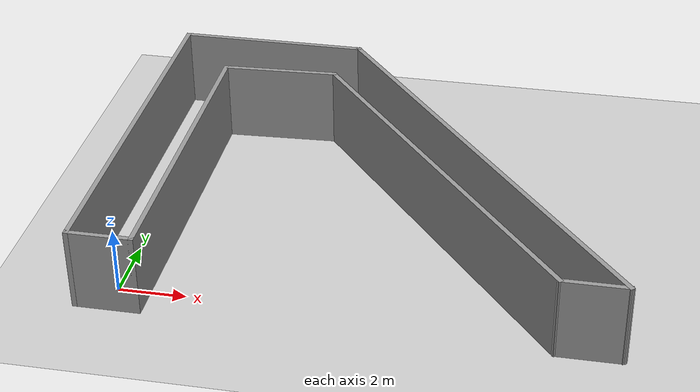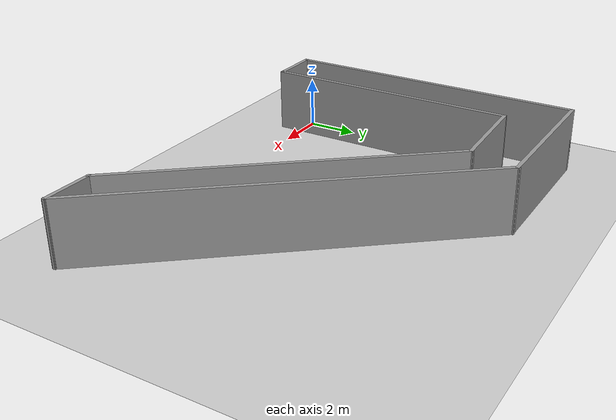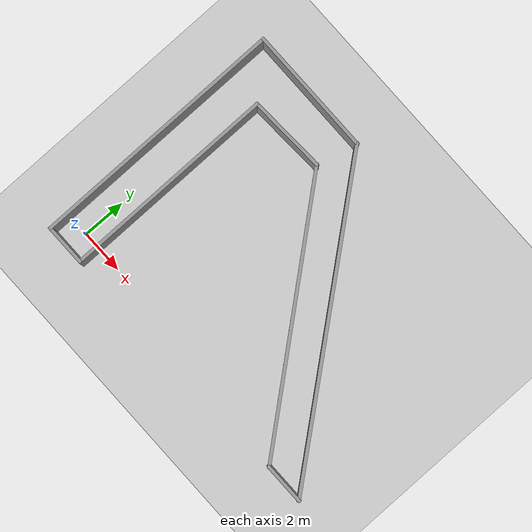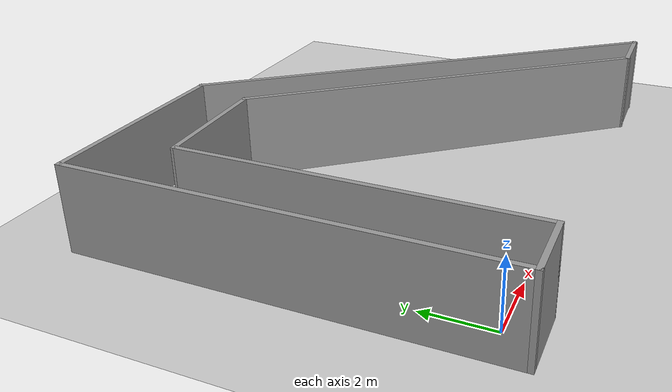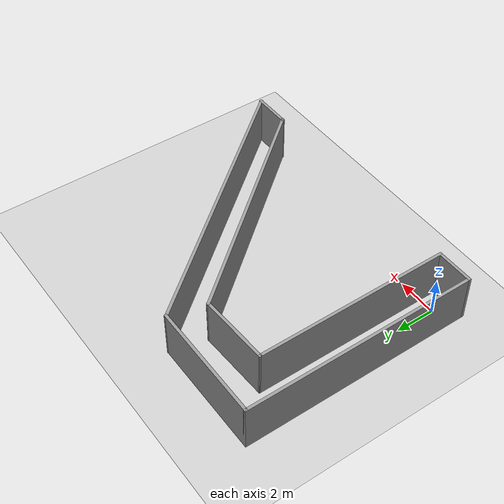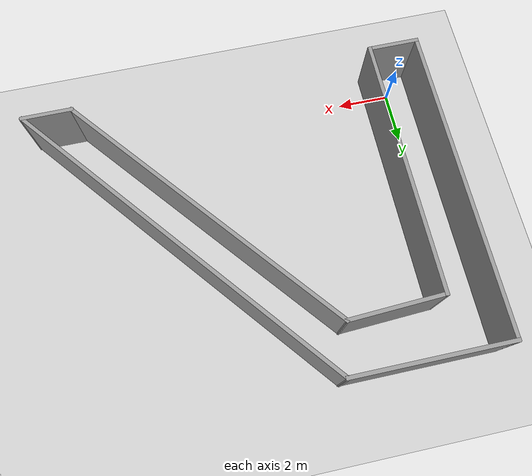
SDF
<sdf version="1.6">
 <world name="default">
  <light name="sun" type="directional">
   <pose>0 0 10 0 -0 0</pose>
   <diffuse>0.8 0.8 0.8 1</diffuse>
   <specular>0.1 0.1 0.1 1</specular>
   <attenuation>
    <range>1000</range>
    <constant>0.9</constant>
    <linear>0.01</linear>
    <quadratic>0.001</quadratic>
   </attenuation>
   <direction>-0.5 0.5 -1</direction>
  </light>
  <model name="ground_plane">
   <static>1</static>
   <link name="link">
    <collision name="collision">
     <geometry><plane><normal>0 0 1</normal><size>100 100</size></plane></geometry>
     <surface><friction><ode><mu>100</mu><mu2>50</mu2></ode></friction></surface>
    </collision>
    <visual name="visual">
     <cast_shadows>0</cast_shadows>
     <geometry><plane><normal>0 0 1</normal><size>100 100</size></plane></geometry>
     <material>
      <script><uri>file://media/materials/scripts/gazebo.material</uri><name>Gazebo/Grey</name></script>
     </material>
    </visual>
   </link>
  </model>
  <gravity>0 0 -9.8</gravity>
  <magnetic_field>6e-06 2.3e-05 -4.2e-05</magnetic_field>
  <atmosphere type="adiabatic"/>
  <physics name="default_physics" default="0" type="ode">
   <max_step_size>0.001</max_step_size>
   <real_time_factor>1</real_time_factor>
   <real_time_update_rate>1000</real_time_update_rate>
  </physics>
  <scene><ambient>0.4 0.4 0.4 1</ambient><background>0.7 0.7 0.7 1</background><shadows>1</shadows></scene>
  <spherical_coordinates>
   <surface_model>EARTH_WGS84</surface_model>
   <latitude_deg>0</latitude_deg>
   <longitude_deg>0</longitude_deg>
   <elevation>0</elevation>
   <heading_deg>0</heading_deg>
  </spherical_coordinates>
  <model name="mapa3">
   <pose>6.68688 5.03577 0 0 -0 0</pose>
   <link name="Wall_24">
    <collision name="Wall_24_Collision">
     <geometry><box><size>2 0.15 2.5</size></box></geometry>
     <pose>0 0 1.25 0 -0 0</pose>
    </collision>
    <visual name="Wall_24_Visual">
     <pose>0 0 1.25 0 -0 0</pose>
     <geometry><box><size>2 0.15 2.5</size></box></geometry>
     <material>
      <script><uri>file://media/materials/scripts/gazebo.material</uri><name>Gazebo/Grey</name></script>
      <ambient>1 1 1 1</ambient>
     </material>
     <meta><layer>0</layer></meta>
    </visual>
    <pose>-6.7334 -5.94024 0 0 -0 0</pose>
   </link>
   <link name="Wall_25">
    <collision name="Wall_25_Collision">
     <geometry><box><size>10 0.15 2.5</size></box></geometry>
     <pose>0 0 1.25 0 -0 0</pose>
    </collision>
    <visual name="Wall_25_Visual">
     <pose>0 0 1.25 0 -0 0</pose>
     <geometry><box><size>10 0.15 2.5</size></box></geometry>
     <material>
      <script><uri>file://media/materials/scripts/gazebo.material</uri><name>Gazebo/Grey</name></script>
      <ambient>1 1 1 1</ambient>
     </material>
     <meta><layer>0</layer></meta>
    </visual>
    <pose>-5.8084 -1.01524 0 0 -0 1.5708</pose>
   </link>
   <link name="Wall_29">
    <collision name="Wall_29_Collision">
     <geometry><box><size>12 0.15 2.5</size></box></geometry>
     <pose>0 0 1.25 0 -0 0</pose>
    </collision>
    <visual name="Wall_29_Visual">
     <pose>0 0 1.25 0 -0 0</pose>
     <geometry><box><size>12 0.15 2.5</size></box></geometry>
     <material>
      <script><uri>file://media/materials/scripts/gazebo.material</uri><name>Gazebo/Grey</name></script>
      <ambient>1 1 1 1</ambient>
     </material>
     <meta><layer>0</layer></meta>
    </visual>
    <pose>-7.6584 -0.015241 0 0 -0 1.5708</pose>
   </link>
   <link name="Wall_30">
    <collision name="Wall_30_Collision">
     <geometry><box><size>6 0.15 2.5</size></box></geometry>
     <pose>0 0 1.25 0 -0 0</pose>
    </collision>
    <visual name="Wall_30_Visual">
     <pose>0 0 1.25 0 -0 0</pose>
     <geometry><box><size>6 0.15 2.5</size></box></geometry>
     <material>
      <script><uri>file://media/materials/scripts/gazebo.material</uri><name>Gazebo/Grey</name></script>
      <ambient>1 1 1 1</ambient>
     </material>
     <meta><layer>0</layer></meta>
    </visual>
    <pose>-4.7334 5.90976 0 0 -0 0</pose>
   </link>
   <link name="Wall_31">
    <collision name="Wall_31_Collision">
     <geometry><box><size>15.1481 0.15 2.5</size></box></geometry>
     <pose>0 0 1.25 0 -0 0</pose>
    </collision>
    <visual name="Wall_31_Visual">
     <pose>0 0 1.25 0 -0 0</pose>
     <geometry><box><size>15.1481 0.15 2.5</size></box></geometry>
     <material>
      <script><uri>file://media/materials/scripts/gazebo.material</uri><name>Gazebo/Grey</name></script>
      <ambient>1 1 1 1</ambient>
     </material>
     <meta><layer>0</layer></meta>
    </visual>
    <pose>2.90976 0.080954 0 0 0 -0.890316</pose>
   </link>
   <link name="Wall_32">
    <collision name="Wall_32_Collision">
     <geometry><box><size>2 0.15 2.5</size></box></geometry>
     <pose>0 0 1.25 0 -0 0</pose>
    </collision>
    <visual name="Wall_32_Visual">
     <pose>0 0 1.25 0 -0 0</pose>
     <geometry><box><size>2 0.15 2.5</size></box></geometry>
     <material>
      <script><uri>file://media/materials/scripts/gazebo.material</uri><name>Gazebo/Grey</name></script>
      <ambient>1 1 1 1</ambient>
     </material>
     <meta><layer>0</layer></meta>
    </visual>
    <pose>6.70292 -5.74785 0 0 -0 3.14159</pose>
   </link>
   <link name="Wall_36">
    <collision name="Wall_36_Collision">
     <geometry><box><size>12.8547 0.15 2.5</size></box></geometry>
     <pose>0 0 1.25 0 -0 0</pose>
    </collision>
    <visual name="Wall_36_Visual">
     <pose>0 0 1.25 0 -0 0</pose>
     <geometry><box><size>12.8547 0.15 2.5</size></box></geometry>
     <material>
      <script><uri>file://media/materials/scripts/gazebo.material</uri><name>Gazebo/Grey</name></script>
      <ambient>1 1 1 1</ambient>
     </material>
     <meta><layer>0</layer></meta>
    </visual>
    <pose>1.75323 -0.833143 0 0 -0 2.25696</pose>
   </link>
   <link name="Wall_38">
    <collision name="Wall_38_Collision">
     <geometry><box><size>3.69111 0.15 2.5</size></box></geometry>
     <pose>0 0 1.25 0 -0 0</pose>
    </collision>
    <visual name="Wall_38_Visual">
     <pose>0 0 1.25 0 -0 0</pose>
     <geometry><box><size>3.69111 0.15 2.5</size></box></geometry>
     <material>
      <script><uri>file://media/materials/scripts/gazebo.material</uri><name>Gazebo/Grey</name></script>
      <ambient>1 1 1 1</ambient>
     </material>
     <meta><layer>0</layer></meta>
    </visual>
    <pose>-4.03993 3.99566 0 0 -0 0.048537</pose>
   </link>
   <static>1</static>
  </model>
 </world>
</sdf>
